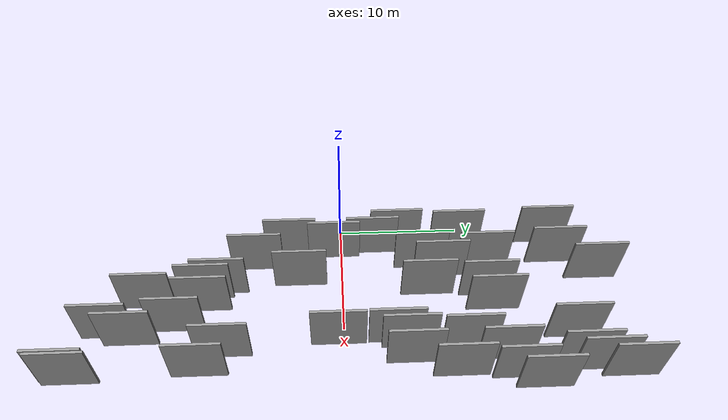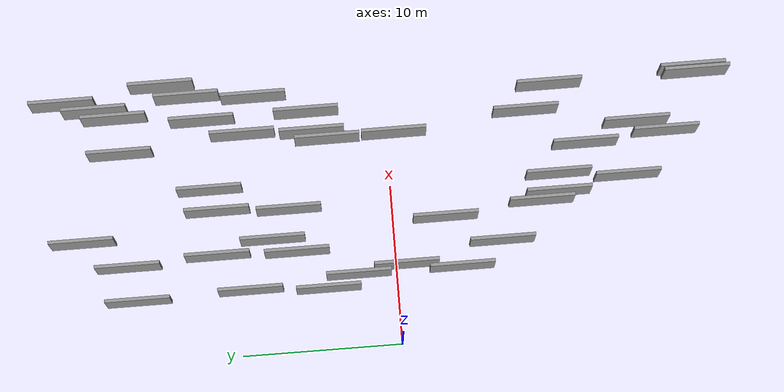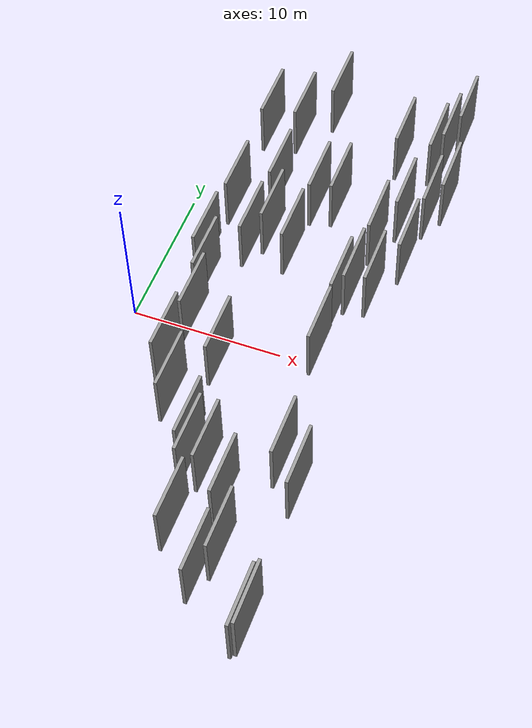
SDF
<sdf version="1.6">
 <world name="default">
  <scene>
   <sky><clouds><speed>12</speed></clouds></sky>
   <ambient>0.4 0.4 0.4 1</ambient>
   <background>0.7 0.7 0.7 1</background>
   <shadows>1</shadows>
  </scene>
  <gravity>0 0 -9.8066</gravity>
  <magnetic_field>6e-06 2.3e-05 -4.2e-05</magnetic_field>
  <physics default="0" name="default_physics" type="ode">
   <ode>
    <solver>
     <type>quick</type>
     <iters>10</iters>
     <sor>1.0</sor>
     <use_dynamic_moi_rescaling>0</use_dynamic_moi_rescaling>
    </solver>
    <constraints>
     <cfm>0</cfm>
     <erp>0.2</erp>
     <contact_max_correcting_vel>100</contact_max_correcting_vel>
     <contact_surface_layer>0.001</contact_surface_layer>
    </constraints>
   </ode>
   <max_step_size>0.004</max_step_size>
   <real_time_factor>1</real_time_factor>
   <real_time_update_rate>250</real_time_update_rate>
  </physics>
  <light name="sun" type="directional">
   <pose>0 0 10 0 0 0</pose>
   <diffuse>0.8 0.8 0.8 1</diffuse>
   <specular>0.2 0.2 0.2 1</specular>
   <attenuation>
    <range>1000</range>
    <constant>0.9</constant>
    <linear>0.01</linear>
    <quadratic>0.001</quadratic>
   </attenuation>
   <direction>-0.5 0.1 -0.9</direction>
  </light>
  <model name="grey_wall_1">
   <static>1</static>
   <pose>12.7719 16.5405 2.5 0.000000 0.000000 1.570796</pose>
   <link name="link">
    <pose>0 0 2.00 0 0 0</pose>
    <collision name="collision"><geometry><box><size>4.00 0.2 4.00</size></box></geometry></collision>
    <visual name="visual">
     <cast_shadows>0</cast_shadows>
     <geometry><box><size>4.00 0.2 4.00</size></box></geometry>
     <material>
      <script>
       <uri>model://grey_wall/materials/scripts</uri>
       <uri>model://grey_wall/materials/textures</uri>
       <name>vrc/grey_wall</name>
      </script>
     </material>
    </visual>
   </link>
  </model>
  <model name="grey_wall_2">
   <static>1</static>
   <pose>8.3696 -10.2756 2.5 0.000000 0.000000 1.570796</pose>
   <link name="link">
    <pose>0 0 2.00 0 0 0</pose>
    <collision name="collision"><geometry><box><size>4.00 0.2 4.00</size></box></geometry></collision>
    <visual name="visual">
     <cast_shadows>0</cast_shadows>
     <geometry><box><size>4.00 0.2 4.00</size></box></geometry>
     <material>
      <script>
       <uri>model://grey_wall/materials/scripts</uri>
       <uri>model://grey_wall/materials/textures</uri>
       <name>vrc/grey_wall</name>
      </script>
     </material>
    </visual>
   </link>
  </model>
  <model name="grey_wall_3">
   <static>1</static>
   <pose>15.6994 8.0807 2.5 0.000000 0.000000 1.570796</pose>
   <link name="link">
    <pose>0 0 2.00 0 0 0</pose>
    <collision name="collision"><geometry><box><size>4.00 0.2 4.00</size></box></geometry></collision>
    <visual name="visual">
     <cast_shadows>0</cast_shadows>
     <geometry><box><size>4.00 0.2 4.00</size></box></geometry>
     <material>
      <script>
       <uri>model://grey_wall/materials/scripts</uri>
       <uri>model://grey_wall/materials/textures</uri>
       <name>vrc/grey_wall</name>
      </script>
     </material>
    </visual>
   </link>
  </model>
  <model name="grey_wall_4">
   <static>1</static>
   <pose>15.5389 17.9189 2.5 0.000000 0.000000 1.570796</pose>
   <link name="link">
    <pose>0 0 2.00 0 0 0</pose>
    <collision name="collision"><geometry><box><size>4.00 0.2 4.00</size></box></geometry></collision>
    <visual name="visual">
     <cast_shadows>0</cast_shadows>
     <geometry><box><size>4.00 0.2 4.00</size></box></geometry>
     <material>
      <script>
       <uri>model://grey_wall/materials/scripts</uri>
       <uri>model://grey_wall/materials/textures</uri>
       <name>vrc/grey_wall</name>
      </script>
     </material>
    </visual>
   </link>
  </model>
  <model name="grey_wall_5">
   <static>1</static>
   <pose>16.1137 19.8715 2.5 0.000000 0.000000 1.570796</pose>
   <link name="link">
    <pose>0 0 2.00 0 0 0</pose>
    <collision name="collision"><geometry><box><size>4.00 0.2 4.00</size></box></geometry></collision>
    <visual name="visual">
     <cast_shadows>0</cast_shadows>
     <geometry><box><size>4.00 0.2 4.00</size></box></geometry>
     <material>
      <script>
       <uri>model://grey_wall/materials/scripts</uri>
       <uri>model://grey_wall/materials/textures</uri>
       <name>vrc/grey_wall</name>
      </script>
     </material>
    </visual>
   </link>
  </model>
  <model name="grey_wall_6">
   <static>1</static>
   <pose>8.5572 6.3975 2.5 0.000000 0.000000 1.570796</pose>
   <link name="link">
    <pose>0 0 2.00 0 0 0</pose>
    <collision name="collision"><geometry><box><size>4.00 0.2 4.00</size></box></geometry></collision>
    <visual name="visual">
     <cast_shadows>0</cast_shadows>
     <geometry><box><size>4.00 0.2 4.00</size></box></geometry>
     <material>
      <script>
       <uri>model://grey_wall/materials/scripts</uri>
       <uri>model://grey_wall/materials/textures</uri>
       <name>vrc/grey_wall</name>
      </script>
     </material>
    </visual>
   </link>
  </model>
  <model name="grey_wall_7">
   <static>1</static>
   <pose>14.5213 4.8947 2.5 0.000000 0.000000 1.570796</pose>
   <link name="link">
    <pose>0 0 2.00 0 0 0</pose>
    <collision name="collision"><geometry><box><size>4.00 0.2 4.00</size></box></geometry></collision>
    <visual name="visual">
     <cast_shadows>0</cast_shadows>
     <geometry><box><size>4.00 0.2 4.00</size></box></geometry>
     <material>
      <script>
       <uri>model://grey_wall/materials/scripts</uri>
       <uri>model://grey_wall/materials/textures</uri>
       <name>vrc/grey_wall</name>
      </script>
     </material>
    </visual>
   </link>
  </model>
  <model name="grey_wall_8">
   <static>1</static>
   <pose>12.8071 -0.4194 2.5 0.000000 0.000000 1.570796</pose>
   <link name="link">
    <pose>0 0 2.00 0 0 0</pose>
    <collision name="collision"><geometry><box><size>4.00 0.2 4.00</size></box></geometry></collision>
    <visual name="visual">
     <cast_shadows>0</cast_shadows>
     <geometry><box><size>4.00 0.2 4.00</size></box></geometry>
     <material>
      <script>
       <uri>model://grey_wall/materials/scripts</uri>
       <uri>model://grey_wall/materials/textures</uri>
       <name>vrc/grey_wall</name>
      </script>
     </material>
    </visual>
   </link>
  </model>
  <model name="grey_wall_9">
   <static>1</static>
   <pose>10.1234 11.1885 2.5 0.000000 0.000000 1.570796</pose>
   <link name="link">
    <pose>0 0 2.00 0 0 0</pose>
    <collision name="collision"><geometry><box><size>4.00 0.2 4.00</size></box></geometry></collision>
    <visual name="visual">
     <cast_shadows>0</cast_shadows>
     <geometry><box><size>4.00 0.2 4.00</size></box></geometry>
     <material>
      <script>
       <uri>model://grey_wall/materials/scripts</uri>
       <uri>model://grey_wall/materials/textures</uri>
       <name>vrc/grey_wall</name>
      </script>
     </material>
    </visual>
   </link>
  </model>
  <model name="grey_wall_10">
   <static>1</static>
   <pose>3.5668 16.0403 2.5 0.000000 0.000000 1.570796</pose>
   <link name="link">
    <pose>0 0 2.00 0 0 0</pose>
    <collision name="collision"><geometry><box><size>4.00 0.2 4.00</size></box></geometry></collision>
    <visual name="visual">
     <cast_shadows>0</cast_shadows>
     <geometry><box><size>4.00 0.2 4.00</size></box></geometry>
     <material>
      <script>
       <uri>model://grey_wall/materials/scripts</uri>
       <uri>model://grey_wall/materials/textures</uri>
       <name>vrc/grey_wall</name>
      </script>
     </material>
    </visual>
   </link>
  </model>
  <model name="grey_wall_11">
   <static>1</static>
   <pose>13.2486 4.6313 2.5 0.000000 0.000000 1.570796</pose>
   <link name="link">
    <pose>0 0 2.00 0 0 0</pose>
    <collision name="collision"><geometry><box><size>4.00 0.2 4.00</size></box></geometry></collision>
    <visual name="visual">
     <cast_shadows>0</cast_shadows>
     <geometry><box><size>4.00 0.2 4.00</size></box></geometry>
     <material>
      <script>
       <uri>model://grey_wall/materials/scripts</uri>
       <uri>model://grey_wall/materials/textures</uri>
       <name>vrc/grey_wall</name>
      </script>
     </material>
    </visual>
   </link>
  </model>
  <model name="grey_wall_12">
   <static>1</static>
   <pose>13.5726 -8.6213 2.5 0.000000 0.000000 1.570796</pose>
   <link name="link">
    <pose>0 0 2.00 0 0 0</pose>
    <collision name="collision"><geometry><box><size>4.00 0.2 4.00</size></box></geometry></collision>
    <visual name="visual">
     <cast_shadows>0</cast_shadows>
     <geometry><box><size>4.00 0.2 4.00</size></box></geometry>
     <material>
      <script>
       <uri>model://grey_wall/materials/scripts</uri>
       <uri>model://grey_wall/materials/textures</uri>
       <name>vrc/grey_wall</name>
      </script>
     </material>
    </visual>
   </link>
  </model>
  <model name="grey_wall_13">
   <static>1</static>
   <pose>5.8875 6.0874 2.5 0.000000 0.000000 1.570796</pose>
   <link name="link">
    <pose>0 0 2.00 0 0 0</pose>
    <collision name="collision"><geometry><box><size>4.00 0.2 4.00</size></box></geometry></collision>
    <visual name="visual">
     <cast_shadows>0</cast_shadows>
     <geometry><box><size>4.00 0.2 4.00</size></box></geometry>
     <material>
      <script>
       <uri>model://grey_wall/materials/scripts</uri>
       <uri>model://grey_wall/materials/textures</uri>
       <name>vrc/grey_wall</name>
      </script>
     </material>
    </visual>
   </link>
  </model>
  <model name="grey_wall_14">
   <static>1</static>
   <pose>15.9937 12.1829 2.5 0.000000 0.000000 1.570796</pose>
   <link name="link">
    <pose>0 0 2.00 0 0 0</pose>
    <collision name="collision"><geometry><box><size>4.00 0.2 4.00</size></box></geometry></collision>
    <visual name="visual">
     <cast_shadows>0</cast_shadows>
     <geometry><box><size>4.00 0.2 4.00</size></box></geometry>
     <material>
      <script>
       <uri>model://grey_wall/materials/scripts</uri>
       <uri>model://grey_wall/materials/textures</uri>
       <name>vrc/grey_wall</name>
      </script>
     </material>
    </visual>
   </link>
  </model>
  <model name="grey_wall_15">
   <static>1</static>
   <pose>7.9061 -9.1925 2.5 0.000000 0.000000 1.570796</pose>
   <link name="link">
    <pose>0 0 2.00 0 0 0</pose>
    <collision name="collision"><geometry><box><size>4.00 0.2 4.00</size></box></geometry></collision>
    <visual name="visual">
     <cast_shadows>0</cast_shadows>
     <geometry><box><size>4.00 0.2 4.00</size></box></geometry>
     <material>
      <script>
       <uri>model://grey_wall/materials/scripts</uri>
       <uri>model://grey_wall/materials/textures</uri>
       <name>vrc/grey_wall</name>
      </script>
     </material>
    </visual>
   </link>
  </model>
  <model name="grey_wall_16">
   <static>1</static>
   <pose>13.4246 8.9197 2.5 0.000000 0.000000 1.570796</pose>
   <link name="link">
    <pose>0 0 2.00 0 0 0</pose>
    <collision name="collision"><geometry><box><size>4.00 0.2 4.00</size></box></geometry></collision>
    <visual name="visual">
     <cast_shadows>0</cast_shadows>
     <geometry><box><size>4.00 0.2 4.00</size></box></geometry>
     <material>
      <script>
       <uri>model://grey_wall/materials/scripts</uri>
       <uri>model://grey_wall/materials/textures</uri>
       <name>vrc/grey_wall</name>
      </script>
     </material>
    </visual>
   </link>
  </model>
  <model name="grey_wall_17">
   <static>1</static>
   <pose>14.9941 16.7528 2.5 0.000000 0.000000 1.570796</pose>
   <link name="link">
    <pose>0 0 2.00 0 0 0</pose>
    <collision name="collision"><geometry><box><size>4.00 0.2 4.00</size></box></geometry></collision>
    <visual name="visual">
     <cast_shadows>0</cast_shadows>
     <geometry><box><size>4.00 0.2 4.00</size></box></geometry>
     <material>
      <script>
       <uri>model://grey_wall/materials/scripts</uri>
       <uri>model://grey_wall/materials/textures</uri>
       <name>vrc/grey_wall</name>
      </script>
     </material>
    </visual>
   </link>
  </model>
  <model name="grey_wall_18">
   <static>1</static>
   <pose>6.7661 7.5261 2.5 0.000000 0.000000 1.570796</pose>
   <link name="link">
    <pose>0 0 2.00 0 0 0</pose>
    <collision name="collision"><geometry><box><size>4.00 0.2 4.00</size></box></geometry></collision>
    <visual name="visual">
     <cast_shadows>0</cast_shadows>
     <geometry><box><size>4.00 0.2 4.00</size></box></geometry>
     <material>
      <script>
       <uri>model://grey_wall/materials/scripts</uri>
       <uri>model://grey_wall/materials/textures</uri>
       <name>vrc/grey_wall</name>
      </script>
     </material>
    </visual>
   </link>
  </model>
  <model name="grey_wall_19">
   <static>1</static>
   <pose>11.6520 -17.1379 2.5 0.000000 0.000000 1.570796</pose>
   <link name="link">
    <pose>0 0 2.00 0 0 0</pose>
    <collision name="collision"><geometry><box><size>4.00 0.2 4.00</size></box></geometry></collision>
    <visual name="visual">
     <cast_shadows>0</cast_shadows>
     <geometry><box><size>4.00 0.2 4.00</size></box></geometry>
     <material>
      <script>
       <uri>model://grey_wall/materials/scripts</uri>
       <uri>model://grey_wall/materials/textures</uri>
       <name>vrc/grey_wall</name>
      </script>
     </material>
    </visual>
   </link>
  </model>
  <model name="grey_wall_20">
   <static>1</static>
   <pose>5.6376 -6.5772 2.5 0.000000 0.000000 1.570796</pose>
   <link name="link">
    <pose>0 0 2.00 0 0 0</pose>
    <collision name="collision"><geometry><box><size>4.00 0.2 4.00</size></box></geometry></collision>
    <visual name="visual">
     <cast_shadows>0</cast_shadows>
     <geometry><box><size>4.00 0.2 4.00</size></box></geometry>
     <material>
      <script>
       <uri>model://grey_wall/materials/scripts</uri>
       <uri>model://grey_wall/materials/textures</uri>
       <name>vrc/grey_wall</name>
      </script>
     </material>
    </visual>
   </link>
  </model>
  <model name="grey_wall_21">
   <static>1</static>
   <pose>7.3546 -3.1918 2.5 0.000000 0.000000 1.570796</pose>
   <link name="link">
    <pose>0 0 2.00 0 0 0</pose>
    <collision name="collision"><geometry><box><size>4.00 0.2 4.00</size></box></geometry></collision>
    <visual name="visual">
     <cast_shadows>0</cast_shadows>
     <geometry><box><size>4.00 0.2 4.00</size></box></geometry>
     <material>
      <script>
       <uri>model://grey_wall/materials/scripts</uri>
       <uri>model://grey_wall/materials/textures</uri>
       <name>vrc/grey_wall</name>
      </script>
     </material>
    </visual>
   </link>
  </model>
  <model name="grey_wall_22">
   <static>1</static>
   <pose>4.2283 2.3947 2.5 0.000000 0.000000 1.570796</pose>
   <link name="link">
    <pose>0 0 2.00 0 0 0</pose>
    <collision name="collision"><geometry><box><size>4.00 0.2 4.00</size></box></geometry></collision>
    <visual name="visual">
     <cast_shadows>0</cast_shadows>
     <geometry><box><size>4.00 0.2 4.00</size></box></geometry>
     <material>
      <script>
       <uri>model://grey_wall/materials/scripts</uri>
       <uri>model://grey_wall/materials/textures</uri>
       <name>vrc/grey_wall</name>
      </script>
     </material>
    </visual>
   </link>
  </model>
  <model name="grey_wall_23">
   <static>1</static>
   <pose>12.3468 -15.3879 2.5 0.000000 0.000000 1.570796</pose>
   <link name="link">
    <pose>0 0 2.00 0 0 0</pose>
    <collision name="collision"><geometry><box><size>4.00 0.2 4.00</size></box></geometry></collision>
    <visual name="visual">
     <cast_shadows>0</cast_shadows>
     <geometry><box><size>4.00 0.2 4.00</size></box></geometry>
     <material>
      <script>
       <uri>model://grey_wall/materials/scripts</uri>
       <uri>model://grey_wall/materials/textures</uri>
       <name>vrc/grey_wall</name>
      </script>
     </material>
    </visual>
   </link>
  </model>
  <model name="grey_wall_24">
   <static>1</static>
   <pose>7.4192 19.2319 2.5 0.000000 0.000000 1.570796</pose>
   <link name="link">
    <pose>0 0 2.00 0 0 0</pose>
    <collision name="collision"><geometry><box><size>4.00 0.2 4.00</size></box></geometry></collision>
    <visual name="visual">
     <cast_shadows>0</cast_shadows>
     <geometry><box><size>4.00 0.2 4.00</size></box></geometry>
     <material>
      <script>
       <uri>model://grey_wall/materials/scripts</uri>
       <uri>model://grey_wall/materials/textures</uri>
       <name>vrc/grey_wall</name>
      </script>
     </material>
    </visual>
   </link>
  </model>
  <model name="grey_wall_25">
   <static>1</static>
   <pose>15.4022 -19.0897 2.5 0.000000 0.000000 1.570796</pose>
   <link name="link">
    <pose>0 0 2.00 0 0 0</pose>
    <collision name="collision"><geometry><box><size>4.00 0.2 4.00</size></box></geometry></collision>
    <visual name="visual">
     <cast_shadows>0</cast_shadows>
     <geometry><box><size>4.00 0.2 4.00</size></box></geometry>
     <material>
      <script>
       <uri>model://grey_wall/materials/scripts</uri>
       <uri>model://grey_wall/materials/textures</uri>
       <name>vrc/grey_wall</name>
      </script>
     </material>
    </visual>
   </link>
  </model>
  <model name="grey_wall_26">
   <static>1</static>
   <pose>15.0860 -10.2003 2.5 0.000000 0.000000 1.570796</pose>
   <link name="link">
    <pose>0 0 2.00 0 0 0</pose>
    <collision name="collision"><geometry><box><size>4.00 0.2 4.00</size></box></geometry></collision>
    <visual name="visual">
     <cast_shadows>0</cast_shadows>
     <geometry><box><size>4.00 0.2 4.00</size></box></geometry>
     <material>
      <script>
       <uri>model://grey_wall/materials/scripts</uri>
       <uri>model://grey_wall/materials/textures</uri>
       <name>vrc/grey_wall</name>
      </script>
     </material>
    </visual>
   </link>
  </model>
  <model name="grey_wall_27">
   <static>1</static>
   <pose>9.0704 -14.5850 2.5 0.000000 0.000000 1.570796</pose>
   <link name="link">
    <pose>0 0 2.00 0 0 0</pose>
    <collision name="collision"><geometry><box><size>4.00 0.2 4.00</size></box></geometry></collision>
    <visual name="visual">
     <cast_shadows>0</cast_shadows>
     <geometry><box><size>4.00 0.2 4.00</size></box></geometry>
     <material>
      <script>
       <uri>model://grey_wall/materials/scripts</uri>
       <uri>model://grey_wall/materials/textures</uri>
       <name>vrc/grey_wall</name>
      </script>
     </material>
    </visual>
   </link>
  </model>
  <model name="grey_wall_28">
   <static>1</static>
   <pose>6.0184 10.9892 2.5 0.000000 0.000000 1.570796</pose>
   <link name="link">
    <pose>0 0 2.00 0 0 0</pose>
    <collision name="collision"><geometry><box><size>4.00 0.2 4.00</size></box></geometry></collision>
    <visual name="visual">
     <cast_shadows>0</cast_shadows>
     <geometry><box><size>4.00 0.2 4.00</size></box></geometry>
     <material>
      <script>
       <uri>model://grey_wall/materials/scripts</uri>
       <uri>model://grey_wall/materials/textures</uri>
       <name>vrc/grey_wall</name>
      </script>
     </material>
    </visual>
   </link>
  </model>
  <model name="grey_wall_29">
   <static>1</static>
   <pose>4.2206 -3.9849 2.5 0.000000 0.000000 1.570796</pose>
   <link name="link">
    <pose>0 0 2.00 0 0 0</pose>
    <collision name="collision"><geometry><box><size>4.00 0.2 4.00</size></box></geometry></collision>
    <visual name="visual">
     <cast_shadows>0</cast_shadows>
     <geometry><box><size>4.00 0.2 4.00</size></box></geometry>
     <material>
      <script>
       <uri>model://grey_wall/materials/scripts</uri>
       <uri>model://grey_wall/materials/textures</uri>
       <name>vrc/grey_wall</name>
      </script>
     </material>
    </visual>
   </link>
  </model>
  <model name="grey_wall_30">
   <static>1</static>
   <pose>11.2616 -12.1391 2.5 0.000000 0.000000 1.570796</pose>
   <link name="link">
    <pose>0 0 2.00 0 0 0</pose>
    <collision name="collision"><geometry><box><size>4.00 0.2 4.00</size></box></geometry></collision>
    <visual name="visual">
     <cast_shadows>0</cast_shadows>
     <geometry><box><size>4.00 0.2 4.00</size></box></geometry>
     <material>
      <script>
       <uri>model://grey_wall/materials/scripts</uri>
       <uri>model://grey_wall/materials/textures</uri>
       <name>vrc/grey_wall</name>
      </script>
     </material>
    </visual>
   </link>
  </model>
  <model name="grey_wall_31">
   <static>1</static>
   <pose>12.7554 3.7188 2.5 0.000000 0.000000 1.570796</pose>
   <link name="link">
    <pose>0 0 2.00 0 0 0</pose>
    <collision name="collision"><geometry><box><size>4.00 0.2 4.00</size></box></geometry></collision>
    <visual name="visual">
     <cast_shadows>0</cast_shadows>
     <geometry><box><size>4.00 0.2 4.00</size></box></geometry>
     <material>
      <script>
       <uri>model://grey_wall/materials/scripts</uri>
       <uri>model://grey_wall/materials/textures</uri>
       <name>vrc/grey_wall</name>
      </script>
     </material>
    </visual>
   </link>
  </model>
  <model name="grey_wall_32">
   <static>1</static>
   <pose>9.4987 -10.3538 2.5 0.000000 0.000000 1.570796</pose>
   <link name="link">
    <pose>0 0 2.00 0 0 0</pose>
    <collision name="collision"><geometry><box><size>4.00 0.2 4.00</size></box></geometry></collision>
    <visual name="visual">
     <cast_shadows>0</cast_shadows>
     <geometry><box><size>4.00 0.2 4.00</size></box></geometry>
     <material>
      <script>
       <uri>model://grey_wall/materials/scripts</uri>
       <uri>model://grey_wall/materials/textures</uri>
       <name>vrc/grey_wall</name>
      </script>
     </material>
    </visual>
   </link>
  </model>
  <model name="grey_wall_33">
   <static>1</static>
   <pose>8.7788 10.8198 2.5 0.000000 0.000000 1.570796</pose>
   <link name="link">
    <pose>0 0 2.00 0 0 0</pose>
    <collision name="collision"><geometry><box><size>4.00 0.2 4.00</size></box></geometry></collision>
    <visual name="visual">
     <cast_shadows>0</cast_shadows>
     <geometry><box><size>4.00 0.2 4.00</size></box></geometry>
     <material>
      <script>
       <uri>model://grey_wall/materials/scripts</uri>
       <uri>model://grey_wall/materials/textures</uri>
       <name>vrc/grey_wall</name>
      </script>
     </material>
    </visual>
   </link>
  </model>
  <model name="grey_wall_34">
   <static>1</static>
   <pose>3.4947 4.3020 2.5 0.000000 0.000000 1.570796</pose>
   <link name="link">
    <pose>0 0 2.00 0 0 0</pose>
    <collision name="collision"><geometry><box><size>4.00 0.2 4.00</size></box></geometry></collision>
    <visual name="visual">
     <cast_shadows>0</cast_shadows>
     <geometry><box><size>4.00 0.2 4.00</size></box></geometry>
     <material>
      <script>
       <uri>model://grey_wall/materials/scripts</uri>
       <uri>model://grey_wall/materials/textures</uri>
       <name>vrc/grey_wall</name>
      </script>
     </material>
    </visual>
   </link>
  </model>
  <model name="grey_wall_35">
   <static>1</static>
   <pose>16.7967 13.7059 2.5 0.000000 0.000000 1.570796</pose>
   <link name="link">
    <pose>0 0 2.00 0 0 0</pose>
    <collision name="collision"><geometry><box><size>4.00 0.2 4.00</size></box></geometry></collision>
    <visual name="visual">
     <cast_shadows>0</cast_shadows>
     <geometry><box><size>4.00 0.2 4.00</size></box></geometry>
     <material>
      <script>
       <uri>model://grey_wall/materials/scripts</uri>
       <uri>model://grey_wall/materials/textures</uri>
       <name>vrc/grey_wall</name>
      </script>
     </material>
    </visual>
   </link>
  </model>
  <model name="grey_wall_36">
   <static>1</static>
   <pose>3.7336 9.1007 2.5 0.000000 0.000000 1.570796</pose>
   <link name="link">
    <pose>0 0 2.00 0 0 0</pose>
    <collision name="collision"><geometry><box><size>4.00 0.2 4.00</size></box></geometry></collision>
    <visual name="visual">
     <cast_shadows>0</cast_shadows>
     <geometry><box><size>4.00 0.2 4.00</size></box></geometry>
     <material>
      <script>
       <uri>model://grey_wall/materials/scripts</uri>
       <uri>model://grey_wall/materials/textures</uri>
       <name>vrc/grey_wall</name>
      </script>
     </material>
    </visual>
   </link>
  </model>
  <model name="grey_wall_37">
   <static>1</static>
   <pose>4.6094 -0.5848 2.5 0.000000 0.000000 1.570796</pose>
   <link name="link">
    <pose>0 0 2.00 0 0 0</pose>
    <collision name="collision"><geometry><box><size>4.00 0.2 4.00</size></box></geometry></collision>
    <visual name="visual">
     <cast_shadows>0</cast_shadows>
     <geometry><box><size>4.00 0.2 4.00</size></box></geometry>
     <material>
      <script>
       <uri>model://grey_wall/materials/scripts</uri>
       <uri>model://grey_wall/materials/textures</uri>
       <name>vrc/grey_wall</name>
      </script>
     </material>
    </visual>
   </link>
  </model>
  <model name="grey_wall_38">
   <static>1</static>
   <pose>15.1603 -19.3318 2.5 0.000000 0.000000 1.570796</pose>
   <link name="link">
    <pose>0 0 2.00 0 0 0</pose>
    <collision name="collision"><geometry><box><size>4.00 0.2 4.00</size></box></geometry></collision>
    <visual name="visual">
     <cast_shadows>0</cast_shadows>
     <geometry><box><size>4.00 0.2 4.00</size></box></geometry>
     <material>
      <script>
       <uri>model://grey_wall/materials/scripts</uri>
       <uri>model://grey_wall/materials/textures</uri>
       <name>vrc/grey_wall</name>
      </script>
     </material>
    </visual>
   </link>
  </model>
  <model name="grey_wall_39">
   <static>1</static>
   <pose>14.4647 11.3549 2.5 0.000000 0.000000 1.570796</pose>
   <link name="link">
    <pose>0 0 2.00 0 0 0</pose>
    <collision name="collision"><geometry><box><size>4.00 0.2 4.00</size></box></geometry></collision>
    <visual name="visual">
     <cast_shadows>0</cast_shadows>
     <geometry><box><size>4.00 0.2 4.00</size></box></geometry>
     <material>
      <script>
       <uri>model://grey_wall/materials/scripts</uri>
       <uri>model://grey_wall/materials/textures</uri>
       <name>vrc/grey_wall</name>
      </script>
     </material>
    </visual>
   </link>
  </model>
  <model name="grey_wall_40">
   <static>1</static>
   <pose>5.7119 16.5138 2.5 0.000000 0.000000 1.570796</pose>
   <link name="link">
    <pose>0 0 2.00 0 0 0</pose>
    <collision name="collision"><geometry><box><size>4.00 0.2 4.00</size></box></geometry></collision>
    <visual name="visual">
     <cast_shadows>0</cast_shadows>
     <geometry><box><size>4.00 0.2 4.00</size></box></geometry>
     <material>
      <script>
       <uri>model://grey_wall/materials/scripts</uri>
       <uri>model://grey_wall/materials/textures</uri>
       <name>vrc/grey_wall</name>
      </script>
     </material>
    </visual>
   </link>
  </model>
 </world>
</sdf>
